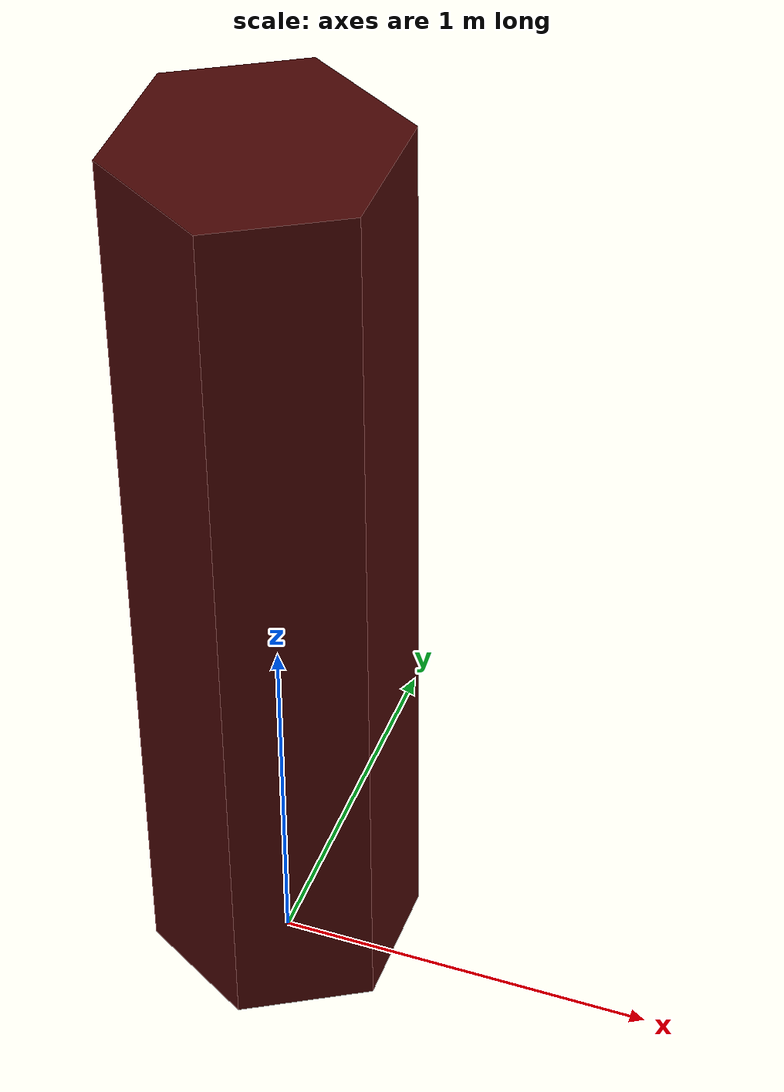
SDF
<?xml version="1.0" ?>
<sdf version="1.6">
  <model name="tracking_object_4">
      <pose>0 0 0  0 0 0</pose>
      <static>true</static>
    <link name="link">
      <visual name="visual">
        <geometry>
          <mesh>
              <uri>model://tracking_object_4/meshes/tracking_object_4.dae</uri>
          </mesh>
        </geometry>
      </visual>
    </link>
  </model>
</sdf>
